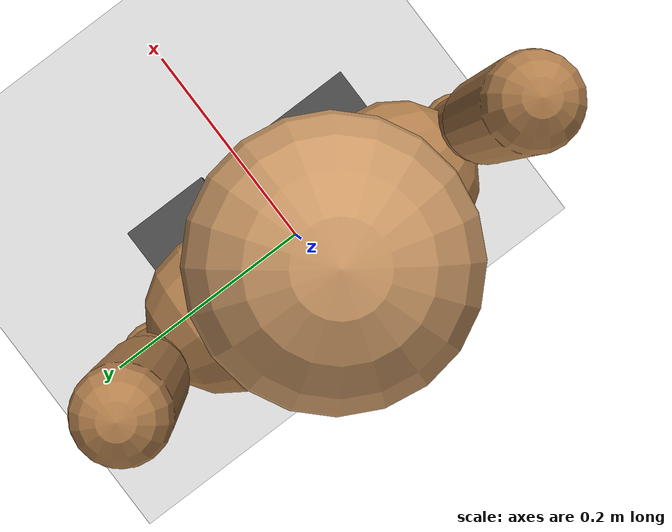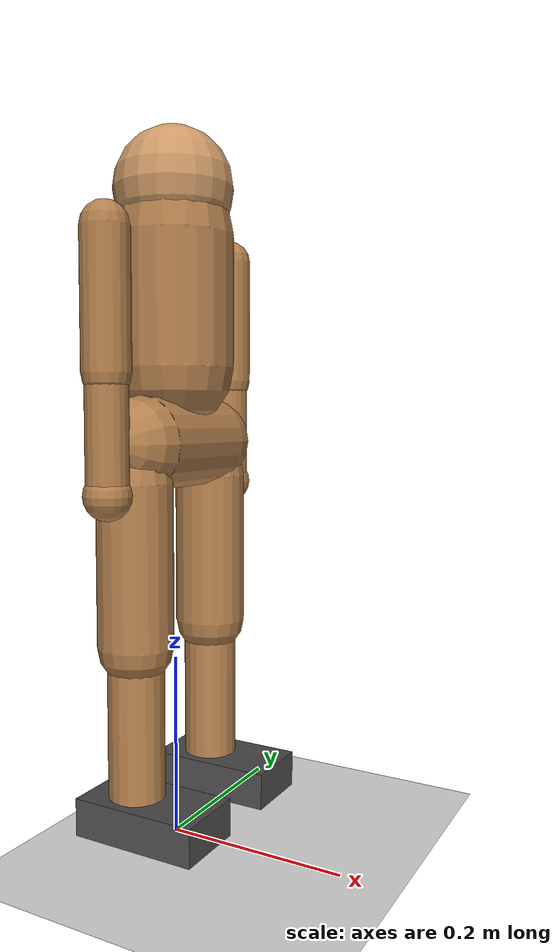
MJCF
<mujoco model="custom_humanoid">
  <compiler angle="radian"/>

  <option timestep="0.005" tolerance="1e-10" iterations="50"/>

  <default>
    <joint limited="true" armature="0.01" damping="0.5"/>
    <geom friction="0.8 0.1 0.01"/>
    <site size="0.01 0.005 0.005" rgba="0.9 0.1 0.1 1"/>
    <general ctrllimited="true" ctrlrange="-1 1" gear="100 0 0 0 0 0"/>
  </default>

  <worldbody>
    <geom name="floor" size="10 10 0.1" type="plane" rgba="0.9 0.9 0.9 1"/>
    <light pos="0 0 5" dir="0 0 -1" type="directional" diffuse="0.8 0.8 0.8" specular="0.2 0.2 0.2"/>
    <body name="pelvis" pos="0 0 0.44">
      <joint name="root" type="free" armature="0" damping="0"/>
      <geom name="pelvis" size="0.05 0.065" quat="0.707107 0.707107 0 0" type="capsule" mass="0.3" rgba="0.7 0.5 0.3 1"/>
      <body name="torso" pos="0 0 0.08">
        <joint name="waist_yaw" pos="0 0 0" axis="0 0 1" range="-0.52 0.52" damping="5"/>
        <joint name="waist_pitch" pos="0 0 0" axis="0 1 0" range="-0.52 0.52" damping="5"/>
        <joint name="waist_roll" pos="0 0 0" axis="1 0 0" range="-0.52 0.52" damping="5"/>
        <geom name="torso" size="0.065 0.07" pos="0 0 0.07" quat="0 1 0 0" type="capsule" mass="0.5" rgba="0.7 0.5 0.3 1"/>
        <site name="imu_site" pos="0 0 0.07"/>
        <body name="head" pos="0 0 0.19">
          <geom name="head" size="0.065" mass="0.05" rgba="0.8 0.6 0.4 1"/>
        </body>
        <body name="right_upper_arm" pos="0 -0.12 0.13">
          <joint name="right_shoulder" pos="0 0 0" axis="0 1 0" range="-0.52 0.52" damping="1"/>
          <geom name="right_upper_arm" size="0.025 0.07" pos="0 0 -0.07" type="capsule" mass="0.04" rgba="0.7 0.5 0.3 1"/>
          <body name="right_lower_arm" pos="0 0 -0.14">
            <joint name="right_elbow" pos="0 0 0" axis="0 1 0" range="0 1.57" damping="1"/>
            <geom name="right_lower_arm" size="0.022 0.06" pos="0 0 -0.06" type="capsule" mass="0.03" rgba="0.7 0.5 0.3 1"/>
            <body name="right_hand" pos="0 0 -0.12">
              <joint name="right_wrist" pos="0 0 0" axis="1 0 0" range="-0.52 0.52"/>
              <geom name="right_hand" size="0.025" mass="0.02" rgba="0.7 0.5 0.3 1"/>
            </body>
          </body>
        </body>
        <body name="left_upper_arm" pos="0 0.12 0.13">
          <joint name="left_shoulder" pos="0 0 0" axis="0 1 0" range="-0.52 0.52" damping="1"/>
          <geom name="left_upper_arm" size="0.025 0.07" pos="0 0 -0.07" type="capsule" mass="0.04" rgba="0.7 0.5 0.3 1"/>
          <body name="left_lower_arm" pos="0 0 -0.14">
            <joint name="left_elbow" pos="0 0 0" axis="0 1 0" range="0 1.57" damping="1"/>
            <geom name="left_lower_arm" size="0.022 0.06" pos="0 0 -0.06" type="capsule" mass="0.03" rgba="0.7 0.5 0.3 1"/>
            <body name="left_hand" pos="0 0 -0.12">
              <joint name="left_wrist" pos="0 0 0" axis="1 0 0" range="-0.52 0.52"/>
              <geom name="left_hand" size="0.025" mass="0.02" rgba="0.7 0.5 0.3 1"/>
            </body>
          </body>
        </body>
      </body>
      <body name="right_thigh" pos="0 -0.075 -0.04">
        <joint name="right_hip_roll" pos="0 0 0" axis="1 0 0" range="-0.52 0.52" damping="5"/>
        <joint name="right_hip_yaw" pos="0 0 0" axis="0 0 1" range="-0.52 0.52" damping="5"/>
        <joint name="right_hip_pitch" pos="0 0 0" axis="0 1 0" range="-0.52 0.52" damping="5"/>
        <geom name="right_thigh" size="0.04 0.085" pos="0 0 -0.085" type="capsule" mass="0.12" rgba="0.7 0.5 0.3 1"/>
        <body name="right_shin" pos="0 0 -0.17">
          <joint name="right_knee" pos="0 0 0" axis="0 1 0" range="0 1.57" damping="5"/>
          <geom name="right_shin" size="0.03 0.08" pos="0 0 -0.08" type="capsule" mass="0.08" rgba="0.7 0.5 0.3 1"/>
          <body name="right_foot" pos="0 0 -0.16">
            <geom name="right_foot" size="0.07 0.04 0.02" pos="0.02 0 -0.02" type="box" mass="0.05" rgba="0.3 0.3 0.3 1"/>
            <site name="right_foot_fsr" pos="0.02 0 -0.02"/>
          </body>
        </body>
      </body>
      <body name="left_thigh" pos="0 0.075 -0.04">
        <joint name="left_hip_roll" pos="0 0 0" axis="1 0 0" range="-0.52 0.52" damping="5"/>
        <joint name="left_hip_yaw" pos="0 0 0" axis="0 0 1" range="-0.52 0.52" damping="5"/>
        <joint name="left_hip_pitch" pos="0 0 0" axis="0 1 0" range="-0.52 0.52" damping="5"/>
        <geom name="left_thigh" size="0.04 0.085" pos="0 0 -0.085" type="capsule" mass="0.12" rgba="0.7 0.5 0.3 1"/>
        <body name="left_shin" pos="0 0 -0.17">
          <joint name="left_knee" pos="0 0 0" axis="0 1 0" range="0 1.57" damping="5"/>
          <geom name="left_shin" size="0.03 0.08" pos="0 0 -0.08" type="capsule" mass="0.08" rgba="0.7 0.5 0.3 1"/>
          <body name="left_foot" pos="0 0 -0.16">
            <geom name="left_foot" size="0.07 0.04 0.02" pos="0.02 0 -0.02" type="box" mass="0.05" rgba="0.3 0.3 0.3 1"/>
            <site name="left_foot_fsr" pos="0.02 0 -0.02"/>
          </body>
        </body>
      </body>
    </body>
  </worldbody>

  <actuator>
    <general name="waist_yaw" joint="waist_yaw"/>
    <general name="waist_pitch" joint="waist_pitch"/>
    <general name="waist_roll" joint="waist_roll"/>
    <general name="right_hip_roll" joint="right_hip_roll"/>
    <general name="right_hip_yaw" joint="right_hip_yaw"/>
    <general name="right_hip_pitch" joint="right_hip_pitch"/>
    <general name="right_knee" joint="right_knee"/>
    <general name="left_hip_roll" joint="left_hip_roll"/>
    <general name="left_hip_yaw" joint="left_hip_yaw"/>
    <general name="left_hip_pitch" joint="left_hip_pitch"/>
    <general name="left_knee" joint="left_knee"/>
    <general name="right_shoulder" joint="right_shoulder" gear="50 0 0 0 0 0"/>
    <general name="right_elbow" joint="right_elbow" gear="50 0 0 0 0 0"/>
    <general name="right_wrist" joint="right_wrist" gear="30 0 0 0 0 0"/>
    <general name="left_shoulder" joint="left_shoulder" gear="50 0 0 0 0 0"/>
    <general name="left_elbow" joint="left_elbow" gear="50 0 0 0 0 0"/>
    <general name="left_wrist" joint="left_wrist" gear="30 0 0 0 0 0"/>
  </actuator>

  <sensor>
    <accelerometer site="imu_site" name="imu_acc"/>
    <gyro site="imu_site" name="imu_gyro"/>
    <framequat objtype="body" objname="torso" name="torso_quat"/>
    <touch site="right_foot_fsr" name="right_foot_contact"/>
    <touch site="left_foot_fsr" name="left_foot_contact"/>
  </sensor>
</mujoco>
